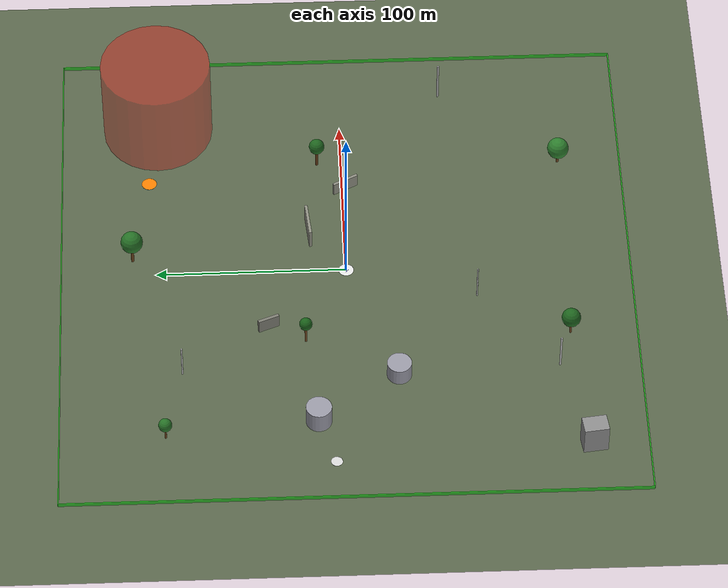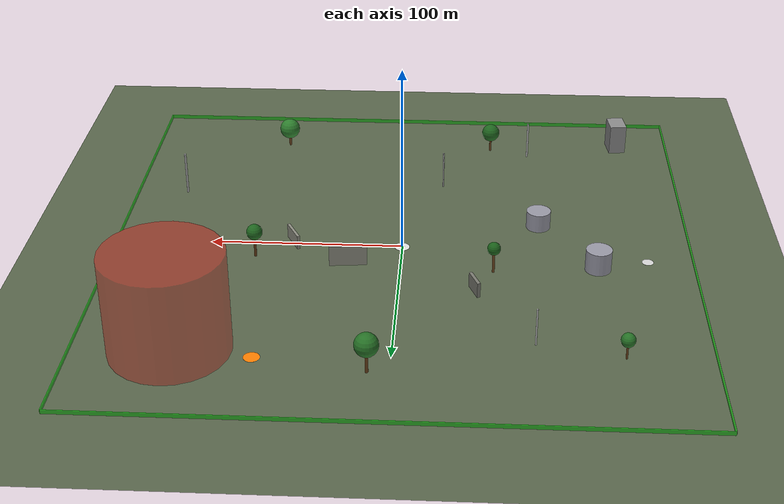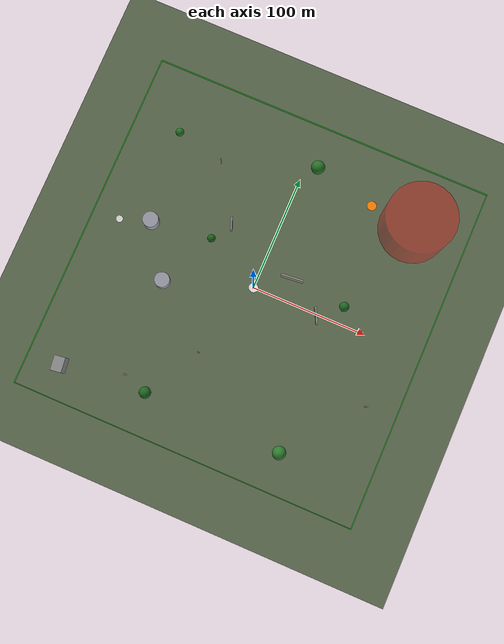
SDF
<?xml version="1.0" ?>
<sdf version="1.9">
  <!--
  Generated World: training_variant_007
  Seed: 49
  Difficulty: medium
  Obstacles: 16
  NFZs: 1
  Generated: 2025-12-27T10:39:35.559031
  Generator: Flyby F-11 World Generator v1.0.0
-->
  <world name="training_variant_007">
    <physics name="training_physics" type="ode">
      <max_step_size>0.001</max_step_size>
      <real_time_factor>1.0</real_time_factor>
      <real_time_update_rate>1000</real_time_update_rate>
      <ode>
        <solver>
          <type>quick</type>
          <iters>50</iters>
          <sor>1.3</sor>
        </solver>
        <constraints>
          <cfm>0.0</cfm>
          <erp>0.2</erp>
        </constraints>
      </ode>
    </physics>
    <plugin filename="gz-sim-physics-system" name="gz::sim::systems::Physics"/>
    <plugin filename="gz-sim-sensors-system" name="gz::sim::systems::Sensors">
      <render_engine>ogre2</render_engine>
    </plugin>
    <plugin filename="gz-sim-scene-broadcaster-system" name="gz::sim::systems::SceneBroadcaster"/>
    <plugin filename="gz-sim-user-commands-system" name="gz::sim::systems::UserCommands"/>
    <plugin filename="gz-sim-imu-system" name="gz::sim::systems::Imu"/>
    <plugin filename="gz-sim-air-pressure-system" name="gz::sim::systems::AirPressure"/>
    <plugin filename="gz-sim-magnetometer-system" name="gz::sim::systems::Magnetometer"/>
    <plugin filename="gz-sim-navsat-system" name="gz::sim::systems::NavSat"/>
    <plugin filename="gz-sim-contact-system" name="gz::sim::systems::Contact"/>
    <plugin filename="gz-sim-wind-effects-system" name="gz::sim::systems::WindEffects">
      <force_approximation_scaling_factor>1.0</force_approximation_scaling_factor>
    </plugin>
    <atmosphere type="adiabatic">
      <temperature>288.15</temperature>
      <pressure>101325</pressure>
      <mass_density>1.225</mass_density>
    </atmosphere>
    <wind>
      <linear_velocity>3.318873365569633 -1.8099188819920147 0</linear_velocity>
    </wind>
    <spherical_coordinates>
      <surface_model>EARTH_WGS84</surface_model>
      <world_frame_orientation>ENU</world_frame_orientation>
      <latitude_deg>33.3853</latitude_deg>
      <longitude_deg>-117.5653</longitude_deg>
      <elevation>100</elevation>
      <heading_deg>0</heading_deg>
    </spherical_coordinates>
    <scene>
      <ambient>0.4 0.35 0.35 1</ambient>
      <background>0.8 0.5 0.4 1</background>
      <shadows>true</shadows>
      <grid>false</grid>
    </scene>
    <light type="directional" name="sun">
      <cast_shadows>true</cast_shadows>
      <pose>0 0 100 0 0 0</pose>
      <diffuse>0.9 0.6 0.4 1</diffuse>
      <specular>0.2 0.1 0.1 1</specular>
      <attenuation>
        <range>1000</range>
        <constant>0.9</constant>
        <linear>0.01</linear>
        <quadratic>0.001</quadratic>
      </attenuation>
      <direction>-0.1 0.3 -0.3</direction>
    </light>
    <model name="ground_plane">
      <static>true</static>
      <link name="link">
        <collision name="collision">
          <geometry>
            <plane>
              <normal>0 0 1</normal>
              <size>500 500</size>
            </plane>
          </geometry>
          <surface>
            <friction>
              <ode>
                <mu>100</mu>
                <mu2>50</mu2>
              </ode>
            </friction>
          </surface>
        </collision>
        <visual name="visual">
          <geometry>
            <plane>
              <normal>0 0 1</normal>
              <size>500 500</size>
            </plane>
          </geometry>
          <material>
            <ambient>0.35 0.4 0.3 1</ambient>
            <diffuse>0.35 0.4 0.3 1</diffuse>
          </material>
        </visual>
      </link>
    </model>
    <model name="geofence_north">
      <static>true</static>
      <pose>0 150.0 1 0 0 0</pose>
      <link name="link">
        <visual name="visual">
          <geometry>
            <box>
              <size>300.0 0.5 2</size>
            </box>
          </geometry>
          <material>
            <ambient>0 0.8 0 0.6</ambient>
            <diffuse>0 0.8 0 0.6</diffuse>
            <emissive>0 0.2 0 1</emissive>
          </material>
        </visual>
      </link>
    </model>
    <model name="geofence_south">
      <static>true</static>
      <pose>0 -150.0 1 0 0 0</pose>
      <link name="link">
        <visual name="visual">
          <geometry>
            <box>
              <size>300.0 0.5 2</size>
            </box>
          </geometry>
          <material>
            <ambient>0 0.8 0 0.6</ambient>
            <diffuse>0 0.8 0 0.6</diffuse>
            <emissive>0 0.2 0 1</emissive>
          </material>
        </visual>
      </link>
    </model>
    <model name="geofence_east">
      <static>true</static>
      <pose>150.0 0 1 0 0 0</pose>
      <link name="link">
        <visual name="visual">
          <geometry>
            <box>
              <size>0.5 300.0 2</size>
            </box>
          </geometry>
          <material>
            <ambient>0 0.8 0 0.6</ambient>
            <diffuse>0 0.8 0 0.6</diffuse>
            <emissive>0 0.2 0 1</emissive>
          </material>
        </visual>
      </link>
    </model>
    <model name="geofence_west">
      <static>true</static>
      <pose>-150.0 0 1 0 0 0</pose>
      <link name="link">
        <visual name="visual">
          <geometry>
            <box>
              <size>0.5 300.0 2</size>
            </box>
          </geometry>
          <material>
            <ambient>0 0.8 0 0.6</ambient>
            <diffuse>0 0.8 0 0.6</diffuse>
            <emissive>0 0.2 0 1</emissive>
          </material>
        </visual>
      </link>
    </model>
    <model name="nfz_0_volume">
      <static>true</static>
      <pose>103.17764591796688 98.30191529652774 25.849329123906397 0 0 0</pose>
      <link name="link">
        <visual name="visual">
          <geometry>
            <cylinder>
              <radius>29.285060697794936</radius>
              <length>51.698658247812794</length>
            </cylinder>
          </geometry>
          <material>
            <ambient>1 0 0 0.35000000000000003</ambient>
            <diffuse>1 0 0 0.35000000000000003</diffuse>
          </material>
        </visual>
      </link>
    </model>
    <model name="obstacle_building_0">
      <static>true</static>
      <pose>-120.34106736120043 -121.64154969165908 8.345923433943042 0 0 0.12122600837119088</pose>
      <link name="link">
        <visual name="visual">
          <geometry>
            <box>
              <size>9.326056807353664 12.769003152766807 16.691846867886085</size>
            </box>
          </geometry>
          <material>
            <ambient>0.55 0.55 0.55 1.0</ambient>
            <diffuse>0.55 0.55 0.55 1.0</diffuse>
          </material>
        </visual>
        <collision name="collision">
          <geometry>
            <box>
              <size>9.326056807353664 12.769003152766807 16.691846867886085</size>
            </box>
          </geometry>
        </collision>
      </link>
    </model>
    <model name="obstacle_wall_1">
      <static>true</static>
      <pose>26.720603455704293 19.112591715310913 5.567394641596337 0 0 0.09571353946374728</pose>
      <link name="link">
        <visual name="visual">
          <geometry>
            <box>
              <size>19.456655779417424 1.5042791382906526 11.134789283192674</size>
            </box>
          </geometry>
          <material>
            <ambient>0.55 0.55 0.5 1.0</ambient>
            <diffuse>0.55 0.55 0.5 1.0</diffuse>
          </material>
        </visual>
        <collision name="collision">
          <geometry>
            <box>
              <size>19.456655779417424 1.5042791382906526 11.134789283192674</size>
            </box>
          </geometry>
        </collision>
      </link>
    </model>
    <model name="obstacle_wall_2">
      <static>true</static>
      <pose>-38.03837392109254 41.72527542058273 3.9796409407062647 0 0 1.9486883849005983</pose>
      <link name="link">
        <visual name="visual">
          <geometry>
            <box>
              <size>11.435745852803334 1.728949430406547 7.9592818814125295</size>
            </box>
          </geometry>
          <material>
            <ambient>0.48 0.48 0.44 1.0</ambient>
            <diffuse>0.48 0.48 0.44 1.0</diffuse>
          </material>
        </visual>
        <collision name="collision">
          <geometry>
            <box>
              <size>11.435745852803334 1.728949430406547 7.9592818814125295</size>
            </box>
          </geometry>
        </collision>
      </link>
    </model>
    <model name="obstacle_tree_3">
      <static>true</static>
      <pose>72.60037952993801 -116.66341566975635 0 0 0 0.0</pose>
      <link name="link">
        <visual name="trunk">
          <pose>0 0 3.6187757100840914 0 0 0</pose>
          <geometry>
            <cylinder>
              <radius>0.7063703206426079</radius>
              <length>7.237551420168183</length>
            </cylinder>
          </geometry>
          <material>
            <ambient>0.42 0.27 0.12 1.0</ambient>
            <diffuse>0.42 0.27 0.12 1.0</diffuse>
          </material>
        </visual>
        <visual name="canopy">
          <pose>0 0 10.675757885005542 0 0 0</pose>
          <geometry>
            <sphere>
              <radius>5.7303441080622655</radius>
            </sphere>
          </geometry>
          <material>
            <ambient>0.18 0.5 0.18 1.0</ambient>
            <diffuse>0.18 0.5 0.18 1.0</diffuse>
          </material>
        </visual>
        <collision name="collision">
          <pose>0 0 9.349119818146356 0 0 0</pose>
          <geometry>
            <cylinder>
              <radius>5.7303441080622655</radius>
              <length>18.698239636292712</length>
            </cylinder>
          </geometry>
        </collision>
      </link>
    </model>
    <model name="obstacle_tree_4">
      <static>true</static>
      <pose>-47.484479534903 22.55383206285964 0 0 0 0.0</pose>
      <link name="link">
        <visual name="trunk">
          <pose>0 0 5.812559125323771 0 0 0</pose>
          <geometry>
            <cylinder>
              <radius>0.6598309695387864</radius>
              <length>11.625118250647542</length>
            </cylinder>
          </geometry>
          <material>
            <ambient>0.42 0.27 0.12 1.0</ambient>
            <diffuse>0.42 0.27 0.12 1.0</diffuse>
          </material>
        </visual>
        <visual name="canopy">
          <pose>0 0 13.66923947044351 0 0 0</pose>
          <geometry>
            <sphere>
              <radius>3.406868699659944</radius>
            </sphere>
          </geometry>
          <material>
            <ambient>0.1 0.38 0.1 1.0</ambient>
            <diffuse>0.1 0.38 0.1 1.0</diffuse>
          </material>
        </visual>
        <collision name="collision">
          <pose>0 0 9.219427824983715 0 0 0</pose>
          <geometry>
            <cylinder>
              <radius>3.406868699659944</radius>
              <length>18.43885564996743</length>
            </cylinder>
          </geometry>
        </collision>
      </link>
    </model>
    <model name="obstacle_tree_5">
      <static>true</static>
      <pose>75.19231490085252 13.042451500842475 0 0 0 0.0</pose>
      <link name="link">
        <visual name="trunk">
          <pose>0 0 5.898309810137222 0 0 0</pose>
          <geometry>
            <cylinder>
              <radius>0.6499653252145499</radius>
              <length>11.796619620274445</length>
            </cylinder>
          </geometry>
          <material>
            <ambient>0.38 0.22 0.08 1.0</ambient>
            <diffuse>0.38 0.22 0.08 1.0</diffuse>
          </material>
        </visual>
        <visual name="canopy">
          <pose>0 0 14.278919926274078 0 0 0</pose>
          <geometry>
            <sphere>
              <radius>4.137167176666056</radius>
            </sphere>
          </geometry>
          <material>
            <ambient>0.12 0.4 0.12 1.0</ambient>
            <diffuse>0.12 0.4 0.12 1.0</diffuse>
          </material>
        </visual>
        <collision name="collision">
          <pose>0 0 10.035476986803278 0 0 0</pose>
          <geometry>
            <cylinder>
              <radius>4.137167176666056</radius>
              <length>20.070953973606557</length>
            </cylinder>
          </geometry>
        </collision>
      </link>
    </model>
    <model name="obstacle_pole_6">
      <static>true</static>
      <pose>122.9442878094217 -54.565715181078616 11.768682187121716 0 0 0.0</pose>
      <link name="link">
        <visual name="visual">
          <geometry>
            <cylinder>
              <radius>0.5776977675067598</radius>
              <length>23.53736437424343</length>
            </cylinder>
          </geometry>
          <material>
            <ambient>0.65 0.65 0.65 1.0</ambient>
            <diffuse>0.65 0.65 0.65 1.0</diffuse>
          </material>
        </visual>
        <collision name="collision">
          <geometry>
            <cylinder>
              <radius>0.5776977675067598</radius>
              <length>23.53736437424343</length>
            </cylinder>
          </geometry>
        </collision>
      </link>
    </model>
    <model name="obstacle_tree_7">
      <static>true</static>
      <pose>-46.48389364976589 -115.01699440736826 0 0 0 0.0</pose>
      <link name="link">
        <visual name="trunk">
          <pose>0 0 4.311475057622256 0 0 0</pose>
          <geometry>
            <cylinder>
              <radius>0.6122673668589633</radius>
              <length>8.622950115244512</length>
            </cylinder>
          </geometry>
          <material>
            <ambient>0.42 0.27 0.12 1.0</ambient>
            <diffuse>0.42 0.27 0.12 1.0</diffuse>
          </material>
        </visual>
        <visual name="canopy">
          <pose>0 0 11.61806432031282 0 0 0</pose>
          <geometry>
            <sphere>
              <radius>4.991857008447181</radius>
            </sphere>
          </geometry>
          <material>
            <ambient>0.12 0.4 0.12 1.0</ambient>
            <diffuse>0.12 0.4 0.12 1.0</diffuse>
          </material>
        </visual>
        <collision name="collision">
          <pose>0 0 9.303332066069437 0 0 0</pose>
          <geometry>
            <cylinder>
              <radius>4.991857008447181</radius>
              <length>18.606664132138874</length>
            </cylinder>
          </geometry>
        </collision>
      </link>
    </model>
    <model name="obstacle_wall_8">
      <static>true</static>
      <pose>57.05144458241901 -1.5811231238893697 3.7837881991210387 0 0 2.044998509135382</pose>
      <link name="link">
        <visual name="visual">
          <geometry>
            <box>
              <size>14.467401472902917 1.481606469738513 7.567576398242077</size>
            </box>
          </geometry>
          <material>
            <ambient>0.55 0.55 0.5 1.0</ambient>
            <diffuse>0.55 0.55 0.5 1.0</diffuse>
          </material>
        </visual>
        <collision name="collision">
          <geometry>
            <box>
              <size>14.467401472902917 1.481606469738513 7.567576398242077</size>
            </box>
          </geometry>
        </collision>
      </link>
    </model>
    <model name="obstacle_tank_9">
      <static>true</static>
      <pose>-71.70717567164087 -24.832587839782718 4.940509064365903 0 0 0.0</pose>
      <link name="link">
        <visual name="visual">
          <geometry>
            <cylinder>
              <radius>6.4163783213906775</radius>
              <length>9.881018128731807</length>
            </cylinder>
          </geometry>
          <material>
            <ambient>0.6 0.6 0.65 1.0</ambient>
            <diffuse>0.6 0.6 0.65 1.0</diffuse>
          </material>
        </visual>
        <collision name="collision">
          <geometry>
            <cylinder>
              <radius>6.4163783213906775</radius>
              <length>9.881018128731807</length>
            </cylinder>
          </geometry>
        </collision>
      </link>
    </model>
    <model name="obstacle_tree_10">
      <static>true</static>
      <pose>-108.44843003536941 95.69850780006797 0 0 0 0.0</pose>
      <link name="link">
        <visual name="trunk">
          <pose>0 0 4.08011535288058 0 0 0</pose>
          <geometry>
            <cylinder>
              <radius>0.5028174832508243</radius>
              <length>8.16023070576116</length>
            </cylinder>
          </geometry>
          <material>
            <ambient>0.4 0.25 0.1 1.0</ambient>
            <diffuse>0.4 0.25 0.1 1.0</diffuse>
          </material>
        </visual>
        <visual name="canopy">
          <pose>0 0 10.281894532983634 0 0 0</pose>
          <geometry>
            <sphere>
              <radius>3.5361063787041234</radius>
            </sphere>
          </geometry>
          <material>
            <ambient>0.15 0.45 0.15 1.0</ambient>
            <diffuse>0.15 0.45 0.15 1.0</diffuse>
          </material>
        </visual>
        <collision name="collision">
          <pose>0 0 7.616221731584703 0 0 0</pose>
          <geometry>
            <cylinder>
              <radius>3.5361063787041234</radius>
              <length>15.232443463169407</length>
            </cylinder>
          </geometry>
        </collision>
      </link>
    </model>
    <model name="obstacle_pole_11">
      <static>true</static>
      <pose>-19.864257853138582 -67.95496894880704 10.48385832407349 0 0 0.0</pose>
      <link name="link">
        <visual name="visual">
          <geometry>
            <cylinder>
              <radius>0.378834255242057</radius>
              <length>20.96771664814698</length>
            </cylinder>
          </geometry>
          <material>
            <ambient>0.7 0.7 0.7 1.0</ambient>
            <diffuse>0.7 0.7 0.7 1.0</diffuse>
          </material>
        </visual>
        <collision name="collision">
          <geometry>
            <cylinder>
              <radius>0.378834255242057</radius>
              <length>20.96771664814698</length>
            </cylinder>
          </geometry>
        </collision>
      </link>
    </model>
    <model name="obstacle_tank_12">
      <static>true</static>
      <pose>-100.7332030512319 17.53054598598837 5.924964968503662 0 0 0.0</pose>
      <link name="link">
        <visual name="visual">
          <geometry>
            <cylinder>
              <radius>6.7053217492607</radius>
              <length>11.849929937007325</length>
            </cylinder>
          </geometry>
          <material>
            <ambient>0.6 0.6 0.65 1.0</ambient>
            <diffuse>0.6 0.6 0.65 1.0</diffuse>
          </material>
        </visual>
        <collision name="collision">
          <geometry>
            <cylinder>
              <radius>6.7053217492607</radius>
              <length>11.849929937007325</length>
            </cylinder>
          </geometry>
        </collision>
      </link>
    </model>
    <model name="obstacle_pole_13">
      <static>true</static>
      <pose>-67.9264045520803 -108.13492689244809 10.558876880507224 0 0 0.0</pose>
      <link name="link">
        <visual name="visual">
          <geometry>
            <cylinder>
              <radius>0.49820191646412504</radius>
              <length>21.11775376101445</length>
            </cylinder>
          </geometry>
          <material>
            <ambient>0.75 0.75 0.75 1.0</ambient>
            <diffuse>0.75 0.75 0.75 1.0</diffuse>
          </material>
        </visual>
        <collision name="collision">
          <geometry>
            <cylinder>
              <radius>0.49820191646412504</radius>
              <length>21.11775376101445</length>
            </cylinder>
          </geometry>
        </collision>
      </link>
    </model>
    <model name="obstacle_tree_14">
      <static>true</static>
      <pose>10.414005356885724 112.30247002690427 0 0 0 0.0</pose>
      <link name="link">
        <visual name="trunk">
          <pose>0 0 5.7438065645709475 0 0 0</pose>
          <geometry>
            <cylinder>
              <radius>0.7919109033578253</radius>
              <length>11.487613129141895</length>
            </cylinder>
          </geometry>
          <material>
            <ambient>0.4 0.25 0.1 1.0</ambient>
            <diffuse>0.4 0.25 0.1 1.0</diffuse>
          </material>
        </visual>
        <visual name="canopy">
          <pose>0 0 14.996967365097763 0 0 0</pose>
          <geometry>
            <sphere>
              <radius>5.848923726593114</radius>
            </sphere>
          </geometry>
          <material>
            <ambient>0.15 0.45 0.15 1.0</ambient>
            <diffuse>0.15 0.45 0.15 1.0</diffuse>
          </material>
        </visual>
        <collision name="collision">
          <pose>0 0 11.592730291164061 0 0 0</pose>
          <geometry>
            <cylinder>
              <radius>5.848923726593114</radius>
              <length>23.185460582328123</length>
            </cylinder>
          </geometry>
        </collision>
      </link>
    </model>
    <model name="obstacle_pole_15">
      <static>true</static>
      <pose>-66.96032590706812 86.80974686526133 9.936569461613072 0 0 0.0</pose>
      <link name="link">
        <visual name="visual">
          <geometry>
            <cylinder>
              <radius>0.39660672264807506</radius>
              <length>19.873138923226144</length>
            </cylinder>
          </geometry>
          <material>
            <ambient>0.75 0.75 0.75 1.0</ambient>
            <diffuse>0.75 0.75 0.75 1.0</diffuse>
          </material>
        </visual>
        <collision name="collision">
          <geometry>
            <cylinder>
              <radius>0.39660672264807506</radius>
              <length>19.873138923226144</length>
            </cylinder>
          </geometry>
        </collision>
      </link>
    </model>
    <model name="lz_primary">
      <static>true</static>
      <pose>0 0 0.02 0 0 0</pose>
      <link name="link">
        <visual name="pad">
          <geometry>
            <cylinder>
              <radius>4.0</radius>
              <length>0.04</length>
            </cylinder>
          </geometry>
          <material>
            <ambient>0.9 0.9 0.9 1</ambient>
            <diffuse>0.9 0.9 0.9 1</diffuse>
          </material>
        </visual>
        <visual name="H_v">
          <pose>0 0 0.02 0 0 0</pose>
          <geometry>
            <box>
              <size>0.6 2.5 0.01</size>
            </box>
          </geometry>
          <material>
            <ambient>0 0 0.8 1</ambient>
            <diffuse>0 0 0.8 1</diffuse>
          </material>
        </visual>
        <visual name="H_h">
          <pose>0 0 0.02 0 0 0</pose>
          <geometry>
            <box>
              <size>2.5 0.6 0.01</size>
            </box>
          </geometry>
          <material>
            <ambient>0 0 0.8 1</ambient>
            <diffuse>0 0 0.8 1</diffuse>
          </material>
        </visual>
      </link>
    </model>
    <model name="lz_secondary">
      <static>true</static>
      <pose>-126.85185362769516 9.261956657072488 0.02 0 0 0</pose>
      <link name="link">
        <visual name="pad">
          <geometry>
            <cylinder>
              <radius>3.0</radius>
              <length>0.04</length>
            </cylinder>
          </geometry>
          <material>
            <ambient>0.85 0.85 0.85 1</ambient>
            <diffuse>0.85 0.85 0.85 1</diffuse>
          </material>
        </visual>
      </link>
    </model>
    <model name="lz_emergency">
      <static>true</static>
      <pose>64.31475622118799 103.36563396617589 0.02 0 0 0</pose>
      <link name="link">
        <visual name="pad">
          <geometry>
            <cylinder>
              <radius>4.0</radius>
              <length>0.04</length>
            </cylinder>
          </geometry>
          <material>
            <ambient>1 0.5 0 1</ambient>
            <diffuse>1 0.5 0 1</diffuse>
          </material>
        </visual>
      </link>
    </model>
    <include>
      <uri>model://iris_with_ardupilot</uri>
      <name>iris</name>
      <pose>0 0 0.5 0 0 0</pose>
    </include>
  </world>
</sdf>

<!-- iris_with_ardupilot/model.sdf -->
<sdf version="1.9">
  <model name="iris_with_ardupilot">
    <pose>0 0 0.2 0 0 0</pose>

    <link name="base_link">
      <inertial>
        <mass>1.5</mass>
        <inertia>
          <ixx>0.029125</ixx>
          <ixy>0</ixy>
          <ixz>0</ixz>
          <iyy>0.029125</iyy>
          <iyz>0</iyz>
          <izz>0.055225</izz>
        </inertia>
      </inertial>

      <visual name="body_visual">
        <geometry>
          <box>
            <size>0.47 0.47 0.11</size>
          </box>
        </geometry>
        <material>
          <ambient>0.2 0.2 0.2 1</ambient>
          <diffuse>0.2 0.2 0.2 1</diffuse>
        </material>
      </visual>

      <!-- Center marker for orientation (green = forward) -->
      <visual name="center_marker">
        <pose>0.15 0 0 0 0 0</pose>
        <geometry>
          <sphere>
            <radius>0.05</radius>
          </sphere>
        </geometry>
        <material>
          <ambient>0 1 0 1</ambient>
          <diffuse>0 1 0 1</diffuse>
        </material>
      </visual>

      <collision name="collision">
        <geometry>
          <box>
            <size>0.47 0.47 0.11</size>
          </box>
        </geometry>
      </collision>

      <!-- GPS/NavSat Sensor                -->
      <!-- Consumer-grade GPS accuracy      -->
      <sensor name="navsat_sensor" type="navsat">
        <always_on>1</always_on>
        <update_rate>10</update_rate>
        <topic>gps</topic>
        <navsat>
          <position_sensing>
            <horizontal>
              <noise type="gaussian">
                <mean>0.0</mean>
                <stddev>0.5</stddev>
              </noise>
            </horizontal>
            <vertical>
              <noise type="gaussian">
                <mean>0.0</mean>
                <stddev>1.0</stddev>
              </noise>
            </vertical>
          </position_sensing>
          <velocity_sensing>
            <horizontal>
              <noise type="gaussian">
                <mean>0.0</mean>
                <stddev>0.05</stddev>
              </noise>
            </horizontal>
            <vertical>
              <noise type="gaussian">
                <mean>0.0</mean>
                <stddev>0.1</stddev>
              </noise>
            </vertical>
          </velocity_sensing>
        </navsat>
      </sensor>

      <!-- Magnetometer Sensor              -->
      <!-- Earth magnetic field sensing     -->
      <!-- Declination: ~11.5 deg E (San Diego) -->
      <sensor name="magnetometer_sensor" type="magnetometer">
        <always_on>1</always_on>
        <update_rate>50</update_rate>
        <topic>magnetometer</topic>
        <magnetometer>
          <x>
            <noise type="gaussian">
              <mean>0</mean>
              <stddev>0.001</stddev>
              <bias_mean>0.00001</bias_mean>
              <bias_stddev>0.000002</bias_stddev>
            </noise>
          </x>
          <y>
            <noise type="gaussian">
              <mean>0</mean>
              <stddev>0.001</stddev>
              <bias_mean>0.00001</bias_mean>
              <bias_stddev>0.000002</bias_stddev>
            </noise>
          </y>
          <z>
            <noise type="gaussian">
              <mean>0</mean>
              <stddev>0.001</stddev>
              <bias_mean>0.00001</bias_mean>
              <bias_stddev>0.000002</bias_stddev>
            </noise>
          </z>
        </magnetometer>
      </sensor>

      <!-- Barometer Sensor                 -->
      <!-- Atmospheric pressure sensing     -->
      <!-- ~8.3 Pa per meter at sea level   -->
      <sensor name="air_pressure_sensor" type="air_pressure">
        <always_on>1</always_on>
        <update_rate>20</update_rate>
        <topic>air_pressure</topic>
        <air_pressure>
          <reference_altitude>0</reference_altitude>
          <pressure>
            <noise type="gaussian">
              <mean>0</mean>
              <stddev>10</stddev>
            </noise>
          </pressure>
        </air_pressure>
      </sensor>

    </link>

    <!-- Rotor 0 (Front Right, CW)        -->
    <link name="rotor_0">
      <pose>0.13 -0.22 0.023 0 0 0</pose>
      <inertial>
        <mass>0.005</mass>
        <inertia>
          <ixx>9.75e-07</ixx>
          <ixy>0</ixy>
          <ixz>0</ixz>
          <iyy>0.000166704</iyy>
          <iyz>0</iyz>
          <izz>0.000167604</izz>
        </inertia>
      </inertial>
      <visual name="visual">
        <geometry>
          <cylinder>
            <radius>0.128</radius>
            <length>0.005</length>
          </cylinder>
        </geometry>
        <material>
          <ambient>1 0 0 1</ambient>
          <diffuse>1 0 0 1</diffuse>
        </material>
      </visual>
    </link>

    <!-- Rotor 1 (Back Left, CW)          -->
    <link name="rotor_1">
      <pose>-0.13 0.2 0.023 0 0 0</pose>
      <inertial>
        <mass>0.005</mass>
        <inertia>
          <ixx>9.75e-07</ixx>
          <ixy>0</ixy>
          <ixz>0</ixz>
          <iyy>0.000166704</iyy>
          <iyz>0</iyz>
          <izz>0.000167604</izz>
        </inertia>
      </inertial>
      <visual name="visual">
        <geometry>
          <cylinder>
            <radius>0.128</radius>
            <length>0.005</length>
          </cylinder>
        </geometry>
        <material>
          <ambient>1 0 0 1</ambient>
          <diffuse>1 0 0 1</diffuse>
        </material>
      </visual>
    </link>

    <!-- Rotor 2 (Front Left, CCW)        -->
    <link name="rotor_2">
      <pose>0.13 0.22 0.023 0 0 0</pose>
      <inertial>
        <mass>0.005</mass>
        <inertia>
          <ixx>9.75e-07</ixx>
          <ixy>0</ixy>
          <ixz>0</ixz>
          <iyy>0.000166704</iyy>
          <iyz>0</iyz>
          <izz>0.000167604</izz>
        </inertia>
      </inertial>
      <visual name="visual">
        <geometry>
          <cylinder>
            <radius>0.128</radius>
            <length>0.005</length>
          </cylinder>
        </geometry>
        <material>
          <ambient>0 0 1 1</ambient>
          <diffuse>0 0 1 1</diffuse>
        </material>
      </visual>
    </link>

    <!-- Rotor 3 (Back Right, CCW)        -->
    <link name="rotor_3">
      <pose>-0.13 -0.2 0.023 0 0 0</pose>
      <inertial>
        <mass>0.005</mass>
        <inertia>
          <ixx>9.75e-07</ixx>
          <ixy>0</ixy>
          <ixz>0</ixz>
          <iyy>0.000166704</iyy>
          <iyz>0</iyz>
          <izz>0.000167604</izz>
        </inertia>
      </inertial>
      <visual name="visual">
        <geometry>
          <cylinder>
            <radius>0.128</radius>
            <length>0.005</length>
          </cylinder>
        </geometry>
        <material>
          <ambient>0 0 1 1</ambient>
          <diffuse>0 0 1 1</diffuse>
        </material>
      </visual>
    </link>

    <!-- Rotor joints -->
    <joint name="rotor_0_joint" type="revolute">
      <parent>base_link</parent>
      <child>rotor_0</child>
      <axis>
        <xyz>0 0 1</xyz>
        <limit>
          <lower>-1e16</lower>
          <upper>1e16</upper>
        </limit>
      </axis>
    </joint>

    <joint name="rotor_1_joint" type="revolute">
      <parent>base_link</parent>
      <child>rotor_1</child>
      <axis>
        <xyz>0 0 1</xyz>
        <limit>
          <lower>-1e16</lower>
          <upper>1e16</upper>
        </limit>
      </axis>
    </joint>

    <joint name="rotor_2_joint" type="revolute">
      <parent>base_link</parent>
      <child>rotor_2</child>
      <axis>
        <xyz>0 0 1</xyz>
        <limit>
          <lower>-1e16</lower>
          <upper>1e16</upper>
        </limit>
      </axis>
    </joint>

    <joint name="rotor_3_joint" type="revolute">
      <parent>base_link</parent>
      <child>rotor_3</child>
      <axis>
        <xyz>0 0 1</xyz>
        <limit>
          <lower>-1e16</lower>
          <upper>1e16</upper>
        </limit>
      </axis>
    </joint>

    <!-- IMU Sensor Link                  -->
    <!-- 250Hz MEMS IMU with noise        -->
    <link name="imu_link">
      <pose>0 0 0 0 0 0</pose>
      <inertial>
        <mass>0.001</mass>
        <inertia>
          <ixx>1e-05</ixx>
          <ixy>0</ixy>
          <ixz>0</ixz>
          <iyy>1e-05</iyy>
          <iyz>0</iyz>
          <izz>1e-05</izz>
        </inertia>
      </inertial>
      <sensor name="imu_sensor" type="imu">
        <always_on>1</always_on>
        <update_rate>250</update_rate>
        <topic>imu</topic>
        <imu>
          <angular_velocity>
            <x>
              <noise type="gaussian">
                <mean>0</mean>
                <stddev>0.009</stddev>
                <bias_mean>0.0001</bias_mean>
                <bias_stddev>0.00002</bias_stddev>
              </noise>
            </x>
            <y>
              <noise type="gaussian">
                <mean>0</mean>
                <stddev>0.009</stddev>
                <bias_mean>0.0001</bias_mean>
                <bias_stddev>0.00002</bias_stddev>
              </noise>
            </y>
            <z>
              <noise type="gaussian">
                <mean>0</mean>
                <stddev>0.009</stddev>
                <bias_mean>0.0001</bias_mean>
                <bias_stddev>0.00002</bias_stddev>
              </noise>
            </z>
          </angular_velocity>
          <linear_acceleration>
            <x>
              <noise type="gaussian">
                <mean>0</mean>
                <stddev>0.017</stddev>
                <bias_mean>0.001</bias_mean>
                <bias_stddev>0.0002</bias_stddev>
              </noise>
            </x>
            <y>
              <noise type="gaussian">
                <mean>0</mean>
                <stddev>0.017</stddev>
                <bias_mean>0.001</bias_mean>
                <bias_stddev>0.0002</bias_stddev>
              </noise>
            </y>
            <z>
              <noise type="gaussian">
                <mean>0</mean>
                <stddev>0.017</stddev>
                <bias_mean>0.001</bias_mean>
                <bias_stddev>0.0002</bias_stddev>
              </noise>
            </z>
          </linear_acceleration>
        </imu>
      </sensor>
    </link>

    <joint name="imu_joint" type="fixed">
      <parent>base_link</parent>
      <child>imu_link</child>
    </joint>

    <!-- Rangefinder Link                 -->
    <!-- Downward-facing lidar for AGL    -->
    <link name="rangefinder_link">
      <pose>0 0 -0.05 0 0 0</pose>
      <inertial>
        <mass>0.01</mass>
        <inertia>
          <ixx>1e-05</ixx>
          <ixy>0</ixy>
          <ixz>0</ixz>
          <iyy>1e-05</iyy>
          <iyz>0</iyz>
          <izz>1e-05</izz>
        </inertia>
      </inertial>
      <visual name="visual">
        <geometry>
          <cylinder>
            <radius>0.01</radius>
            <length>0.02</length>
          </cylinder>
        </geometry>
        <material>
          <ambient>0.5 0.5 0.5 1</ambient>
          <diffuse>0.5 0.5 0.5 1</diffuse>
        </material>
      </visual>
      <sensor name="rangefinder" type="gpu_lidar">
        <!-- Pointing straight down (pitch = -90 deg = -1.5708 rad) -->
        <pose>0 0 0 0 1.5708 0</pose>
        <always_on>1</always_on>
        <update_rate>20</update_rate>
        <topic>rangefinder</topic>
        <ray>
          <scan>
            <horizontal>
              <samples>1</samples>
              <resolution>1</resolution>
              <min_angle>0</min_angle>
              <max_angle>0</max_angle>
            </horizontal>
            <vertical>
              <samples>1</samples>
              <resolution>1</resolution>
              <min_angle>0</min_angle>
              <max_angle>0</max_angle>
            </vertical>
          </scan>
          <range>
            <min>0.1</min>
            <max>40.0</max>
            <resolution>0.01</resolution>
          </range>
          <noise>
            <type>gaussian</type>
            <mean>0</mean>
            <stddev>0.02</stddev>
          </noise>
        </ray>
        <visualize>false</visualize>
      </sensor>
    </link>

    <joint name="rangefinder_joint" type="fixed">
      <parent>base_link</parent>
      <child>rangefinder_link</child>
    </joint>

    <!-- ArduPilot Plugin                 -->
    <plugin filename="ArduPilotPlugin" name="ArduPilotPlugin">
      <!-- Network Configuration -->
      <fdm_addr>127.0.0.1</fdm_addr>
      <fdm_port_in>9002</fdm_port_in>
      <fdm_port_out>9003</fdm_port_out>
      <connectionTimeoutMaxCount>5</connectionTimeoutMaxCount>

      <!-- Simulation Settings -->
      <lock_step>1</lock_step>
      <have_32_channels>0</have_32_channels>

      <!-- Coordinate Transforms -->
      <modelXYZToAirplaneXForwardZDown>0 0 0 3.141593 0 0</modelXYZToAirplaneXForwardZDown>
      <gazeboXYZToNED>0 0 0 3.141593 0 0</gazeboXYZToNED>

      <!-- Sensor Reference -->
      <imuName>imu_link::imu_sensor</imuName>

      <!-- Control Channel 0: Front Right (CW) -->
      <control channel="0">
        <jointName>rotor_0_joint</jointName>
        <useForce>1</useForce>
        <multiplier>838</multiplier>
        <offset>-0.5</offset>
        <servo_min>1000</servo_min>
        <servo_max>2000</servo_max>
        <type>VELOCITY</type>
        <p_gain>0.20</p_gain>
        <i_gain>0</i_gain>
        <d_gain>0</d_gain>
        <i_max>0</i_max>
        <i_min>0</i_min>
        <cmd_max>2.5</cmd_max>
        <cmd_min>-2.5</cmd_min>
      </control>

      <!-- Control Channel 1: Back Left (CW) -->
      <control channel="1">
        <jointName>rotor_1_joint</jointName>
        <useForce>1</useForce>
        <multiplier>838</multiplier>
        <offset>-0.5</offset>
        <servo_min>1000</servo_min>
        <servo_max>2000</servo_max>
        <type>VELOCITY</type>
        <p_gain>0.20</p_gain>
        <i_gain>0</i_gain>
        <d_gain>0</d_gain>
        <i_max>0</i_max>
        <i_min>0</i_min>
        <cmd_max>2.5</cmd_max>
        <cmd_min>-2.5</cmd_min>
      </control>

      <!-- Control Channel 2: Front Left (CCW) -->
      <control channel="2">
        <jointName>rotor_2_joint</jointName>
        <useForce>1</useForce>
        <multiplier>838</multiplier>
        <offset>-0.5</offset>
        <servo_min>1000</servo_min>
        <servo_max>2000</servo_max>
        <type>VELOCITY</type>
        <p_gain>0.20</p_gain>
        <i_gain>0</i_gain>
        <d_gain>0</d_gain>
        <i_max>0</i_max>
        <i_min>0</i_min>
        <cmd_max>2.5</cmd_max>
        <cmd_min>-2.5</cmd_min>
      </control>

      <!-- Control Channel 3: Back Right (CCW) -->
      <control channel="3">
        <jointName>rotor_3_joint</jointName>
        <useForce>1</useForce>
        <multiplier>838</multiplier>
        <offset>-0.5</offset>
        <servo_min>1000</servo_min>
        <servo_max>2000</servo_max>
        <type>VELOCITY</type>
        <p_gain>0.20</p_gain>
        <i_gain>0</i_gain>
        <d_gain>0</d_gain>
        <i_max>0</i_max>
        <i_min>0</i_min>
        <cmd_max>2.5</cmd_max>
        <cmd_min>-2.5</cmd_min>
      </control>
    </plugin>

  </model>
</sdf>
